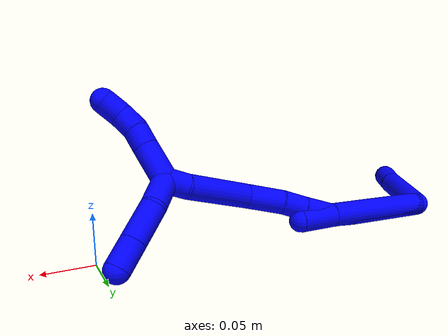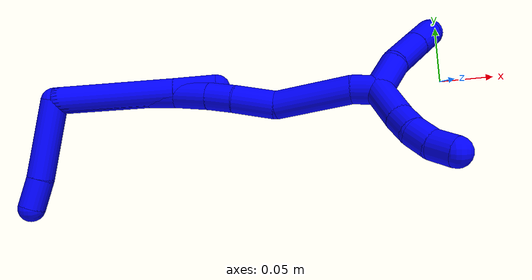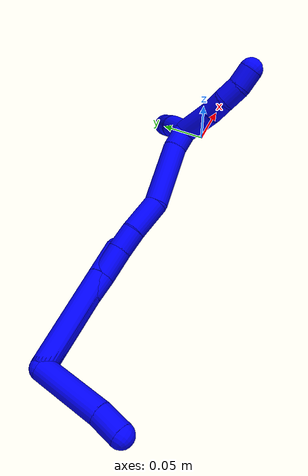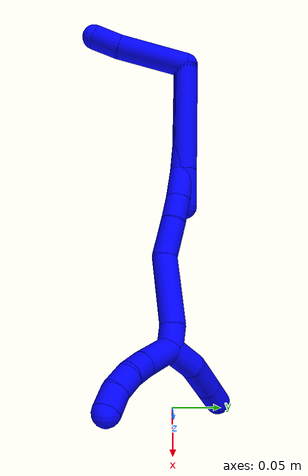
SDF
<sdf version="1.7">
 <world name="default">
  <model name="1">
   <static>0</static>
   <link name="1">
    <collision name="collision-cylinder-e_1_2_8">
     <pose>0.003902 0.002028 -0.055302 -3.10493 0.070403 -2.18167</pose>
     <geometry><cylinder><radius>0.0125</radius><length>0.110953</length></cylinder></geometry>
     <surface>
      <friction><ode><mu>1.16</mu><mu2>1.16</mu2><slip1>0</slip1><slip2>0</slip2></ode></friction>
      <contact><ode><kp>1e+06</kp><kd>1</kd><max_vel>0</max_vel><min_depth>0.001</min_depth></ode></contact>
     </surface>
    </collision>
    <visual name="visual-cylinder-e_1_2_8">
     <pose>0.003902 0.002028 -0.055302 -3.10493 0.070403 -2.18167</pose>
     <geometry><cylinder><radius>0.0125</radius><length>0.110953</length></cylinder></geometry>
     <material><ambient>0 0 1 1</ambient></material>
    </visual>
    <collision name="collision-cylinder-e_2_8_6">
     <pose>0.008786 0.005256 -0.130065 -3.08002 0.05027 -1.36926</pose>
     <geometry><cylinder><radius>0.0125</radius><length>0.039047</length></cylinder></geometry>
     <surface>
      <friction><ode><mu>1.16</mu><mu2>1.16</mu2><slip1>0</slip1><slip2>0</slip2></ode></friction>
      <contact><ode><kp>1e+06</kp><kd>1</kd><max_vel>0</max_vel><min_depth>0.001</min_depth></ode></contact>
     </surface>
    </collision>
    <visual name="visual-cylinder-e_2_8_6">
     <pose>0.008786 0.005256 -0.130065 -3.08002 0.05027 -1.36926</pose>
     <geometry><cylinder><radius>0.0125</radius><length>0.039047</length></cylinder></geometry>
     <material><ambient>0 0 1 1</ambient></material>
    </visual>
    <collision name="collision-cylinder-e_1_2_9">
     <pose>-0.014876 -0.032429 0.006212 1.38152 -0.423312 -0.351569</pose>
     <geometry><cylinder><radius>0.0125</radius><length>0.07243</length></cylinder></geometry>
     <surface>
      <friction><ode><mu>1.16</mu><mu2>1.16</mu2><slip1>0</slip1><slip2>0</slip2></ode></friction>
      <contact><ode><kp>1e+06</kp><kd>1</kd><max_vel>0</max_vel><min_depth>0.001</min_depth></ode></contact>
     </surface>
    </collision>
    <visual name="visual-cylinder-e_1_2_9">
     <pose>-0.014876 -0.032429 0.006212 1.38152 -0.423312 -0.351569</pose>
     <geometry><cylinder><radius>0.0125</radius><length>0.07243</length></cylinder></geometry>
     <material><ambient>0 0 1 1</ambient></material>
    </visual>
    <collision name="collision-cylinder-e_2_9_5">
     <pose>-0.035422 -0.076801 0.016326 1.25511 -0.423854 -0.309642</pose>
     <geometry><cylinder><radius>0.0125</radius><length>0.02757</length></cylinder></geometry>
     <surface>
      <friction><ode><mu>1.16</mu><mu2>1.16</mu2><slip1>0</slip1><slip2>0</slip2></ode></friction>
      <contact><ode><kp>1e+06</kp><kd>1</kd><max_vel>0</max_vel><min_depth>0.001</min_depth></ode></contact>
     </surface>
    </collision>
    <visual name="visual-cylinder-e_2_9_5">
     <pose>-0.035422 -0.076801 0.016326 1.25511 -0.423854 -0.309642</pose>
     <geometry><cylinder><radius>0.0125</radius><length>0.02757</length></cylinder></geometry>
     <material><ambient>0 0 1 1</ambient></material>
    </visual>
    <collision name="collision-cylinder-e_1_2_10">
     <pose>0.002466 0.001609 -0.04363 -3.10473 0.056415 -1.98418</pose>
     <geometry><cylinder><radius>0.0125</radius><length>0.087459</length></cylinder></geometry>
     <surface>
      <friction><ode><mu>1.16</mu><mu2>1.16</mu2><slip1>0</slip1><slip2>0</slip2></ode></friction>
      <contact><ode><kp>1e+06</kp><kd>1</kd><max_vel>0</max_vel><min_depth>0.001</min_depth></ode></contact>
     </surface>
    </collision>
    <visual name="visual-cylinder-e_1_2_10">
     <pose>0.002466 0.001609 -0.04363 -3.10473 0.056415 -1.98418</pose>
     <geometry><cylinder><radius>0.0125</radius><length>0.087459</length></cylinder></geometry>
     <material><ambient>0 0 1 1</ambient></material>
    </visual>
    <collision name="collision-cylinder-e_2_10_11">
     <pose>0.005581 0.002708 -0.099985 3.10153 0.050989 1.80982</pose>
     <geometry><cylinder><radius>0.0125</radius><length>0.025504</length></cylinder></geometry>
     <surface>
      <friction><ode><mu>1.16</mu><mu2>1.16</mu2><slip1>0</slip1><slip2>0</slip2></ode></friction>
      <contact><ode><kp>1e+06</kp><kd>1</kd><max_vel>0</max_vel><min_depth>0.001</min_depth></ode></contact>
     </surface>
    </collision>
    <visual name="visual-cylinder-e_2_10_11">
     <pose>0.005581 0.002708 -0.099985 3.10153 0.050989 1.80982</pose>
     <geometry><cylinder><radius>0.0125</radius><length>0.025504</length></cylinder></geometry>
     <material><ambient>0 0 1 1</ambient></material>
    </visual>
    <collision name="collision-cylinder-e_3_11_12">
     <pose>0.010662 -0.00149 -0.127997 2.90484 0.274602 1.72016</pose>
     <geometry><cylinder><radius>0.0125</radius><length>0.032676</length></cylinder></geometry>
     <surface>
      <friction><ode><mu>1.16</mu><mu2>1.16</mu2><slip1>0</slip1><slip2>0</slip2></ode></friction>
      <contact><ode><kp>1e+06</kp><kd>1</kd><max_vel>0</max_vel><min_depth>0.001</min_depth></ode></contact>
     </surface>
    </collision>
    <visual name="visual-cylinder-e_3_11_12">
     <pose>0.010662 -0.00149 -0.127997 2.90484 0.274602 1.72016</pose>
     <geometry><cylinder><radius>0.0125</radius><length>0.032676</length></cylinder></geometry>
     <material><ambient>0 0 1 1</ambient></material>
    </visual>
    <collision name="collision-cylinder-e_4_12_13">
     <pose>0.018359 -0.008645 -0.154751 2.84803 0.266236 1.47195</pose>
     <geometry><cylinder><radius>0.0125</radius><length>0.024832</length></cylinder></geometry>
     <surface>
      <friction><ode><mu>1.16</mu><mu2>1.16</mu2><slip1>0</slip1><slip2>0</slip2></ode></friction>
      <contact><ode><kp>1e+06</kp><kd>1</kd><max_vel>0</max_vel><min_depth>0.001</min_depth></ode></contact>
     </surface>
    </collision>
    <visual name="visual-cylinder-e_4_12_13">
     <pose>0.018359 -0.008645 -0.154751 2.84803 0.266236 1.47195</pose>
     <geometry><cylinder><radius>0.0125</radius><length>0.024832</length></cylinder></geometry>
     <material><ambient>0 0 1 1</ambient></material>
    </visual>
    <collision name="collision-cylinder-e_5_13_14">
     <pose>0.024488 -0.017089 -0.184579 2.87687 0.149342 1.02387</pose>
     <geometry><cylinder><radius>0.0125</radius><length>0.038477</length></cylinder></geometry>
     <surface>
      <friction><ode><mu>1.16</mu><mu2>1.16</mu2><slip1>0</slip1><slip2>0</slip2></ode></friction>
      <contact><ode><kp>1e+06</kp><kd>1</kd><max_vel>0</max_vel><min_depth>0.001</min_depth></ode></contact>
     </surface>
    </collision>
    <visual name="visual-cylinder-e_5_13_14">
     <pose>0.024488 -0.017089 -0.184579 2.87687 0.149342 1.02387</pose>
     <geometry><cylinder><radius>0.0125</radius><length>0.038477</length></cylinder></geometry>
     <material><ambient>0 0 1 1</ambient></material>
    </visual>
    <collision name="collision-cylinder-e_6_14_15">
     <pose>0.039848 -0.021698 -0.234966 -3.13008 0.37206 -3.08043</pose>
     <geometry><cylinder><radius>0.0125</radius><length>0.06876</length></cylinder></geometry>
     <surface>
      <friction><ode><mu>1.16</mu><mu2>1.16</mu2><slip1>0</slip1><slip2>0</slip2></ode></friction>
      <contact><ode><kp>1e+06</kp><kd>1</kd><max_vel>0</max_vel><min_depth>0.001</min_depth></ode></contact>
     </surface>
    </collision>
    <visual name="visual-cylinder-e_6_14_15">
     <pose>0.039848 -0.021698 -0.234966 -3.13008 0.37206 -3.08043</pose>
     <geometry><cylinder><radius>0.0125</radius><length>0.06876</length></cylinder></geometry>
     <material><ambient>0 0 1 1</ambient></material>
    </visual>
    <collision name="collision-cylinder-e_7_15_1">
     <pose>0.055795 -0.023815 -0.277295 2.90482 0.314545 1.85452</pose>
     <geometry><cylinder><radius>0.0125</radius><length>0.022293</length></cylinder></geometry>
     <surface>
      <friction><ode><mu>1.16</mu><mu2>1.16</mu2><slip1>0</slip1><slip2>0</slip2></ode></friction>
      <contact><ode><kp>1e+06</kp><kd>1</kd><max_vel>0</max_vel><min_depth>0.001</min_depth></ode></contact>
     </surface>
    </collision>
    <visual name="visual-cylinder-e_7_15_1">
     <pose>0.055795 -0.023815 -0.277295 2.90482 0.314545 1.85452</pose>
     <geometry><cylinder><radius>0.0125</radius><length>0.022293</length></cylinder></geometry>
     <material><ambient>0 0 1 1</ambient></material>
    </visual>
    <collision name="collision-cylinder-e_1_1_16">
     <pose>0.057691 -0.012264 -0.296198 -2.12039 -0.094044 0.16762</pose>
     <geometry><cylinder><radius>0.0125</radius><length>0.03307</length></cylinder></geometry>
     <surface>
      <friction><ode><mu>1.16</mu><mu2>1.16</mu2><slip1>0</slip1><slip2>0</slip2></ode></friction>
      <contact><ode><kp>1e+06</kp><kd>1</kd><max_vel>0</max_vel><min_depth>0.001</min_depth></ode></contact>
     </surface>
    </collision>
    <visual name="visual-cylinder-e_1_1_16">
     <pose>0.057691 -0.012264 -0.296198 -2.12039 -0.094044 0.16762</pose>
     <geometry><cylinder><radius>0.0125</radius><length>0.03307</length></cylinder></geometry>
     <material><ambient>0 0 1 1</ambient></material>
    </visual>
    <collision name="collision-cylinder-e_2_16_17">
     <pose>0.049603 0.015437 -0.316539 -2.28076 -0.347973 0.731219</pose>
     <geometry><cylinder><radius>0.0125</radius><length>0.038329</length></cylinder></geometry>
     <surface>
      <friction><ode><mu>1.16</mu><mu2>1.16</mu2><slip1>0</slip1><slip2>0</slip2></ode></friction>
      <contact><ode><kp>1e+06</kp><kd>1</kd><max_vel>0</max_vel><min_depth>0.001</min_depth></ode></contact>
     </surface>
    </collision>
    <visual name="visual-cylinder-e_2_16_17">
     <pose>0.049603 0.015437 -0.316539 -2.28076 -0.347973 0.731219</pose>
     <geometry><cylinder><radius>0.0125</radius><length>0.038329</length></cylinder></geometry>
     <material><ambient>0 0 1 1</ambient></material>
    </visual>
    <collision name="collision-cylinder-e_3_17_4">
     <pose>0.038155 0.039248 -0.337078 -2.28495 -0.350751 0.740386</pose>
     <geometry><cylinder><radius>0.0125</radius><length>0.028601</length></cylinder></geometry>
     <surface>
      <friction><ode><mu>1.16</mu><mu2>1.16</mu2><slip1>0</slip1><slip2>0</slip2></ode></friction>
      <contact><ode><kp>1e+06</kp><kd>1</kd><max_vel>0</max_vel><min_depth>0.001</min_depth></ode></contact>
     </surface>
    </collision>
    <visual name="visual-cylinder-e_3_17_4">
     <pose>0.038155 0.039248 -0.337078 -2.28495 -0.350751 0.740386</pose>
     <geometry><cylinder><radius>0.0125</radius><length>0.028601</length></cylinder></geometry>
     <material><ambient>0 0 1 1</ambient></material>
    </visual>
    <collision name="collision-cylinder-e_1_1_18">
     <pose>0.066127 -0.043361 -0.293521 1.90494 0.364171 0.506534</pose>
     <geometry><cylinder><radius>0.0125</radius><length>0.038652</length></cylinder></geometry>
     <surface>
      <friction><ode><mu>1.16</mu><mu2>1.16</mu2><slip1>0</slip1><slip2>0</slip2></ode></friction>
      <contact><ode><kp>1e+06</kp><kd>1</kd><max_vel>0</max_vel><min_depth>0.001</min_depth></ode></contact>
     </surface>
    </collision>
    <visual name="visual-cylinder-e_1_1_18">
     <pose>0.066127 -0.043361 -0.293521 1.90494 0.364171 0.506534</pose>
     <geometry><cylinder><radius>0.0125</radius><length>0.038652</length></cylinder></geometry>
     <material><ambient>0 0 1 1</ambient></material>
    </visual>
    <collision name="collision-cylinder-e_2_18_19">
     <pose>0.077753 -0.068915 -0.302755 1.94248 0.479656 0.687171</pose>
     <geometry><cylinder><radius>0.0125</radius><length>0.020552</length></cylinder></geometry>
     <surface>
      <friction><ode><mu>1.16</mu><mu2>1.16</mu2><slip1>0</slip1><slip2>0</slip2></ode></friction>
      <contact><ode><kp>1e+06</kp><kd>1</kd><max_vel>0</max_vel><min_depth>0.001</min_depth></ode></contact>
     </surface>
    </collision>
    <visual name="visual-cylinder-e_2_18_19">
     <pose>0.077753 -0.068915 -0.302755 1.94248 0.479656 0.687171</pose>
     <geometry><cylinder><radius>0.0125</radius><length>0.020552</length></cylinder></geometry>
     <material><ambient>0 0 1 1</ambient></material>
    </visual>
    <collision name="collision-cylinder-e_3_19_20">
     <pose>0.086085 -0.084855 -0.311819 2.22865 0.364469 0.718006</pose>
     <geometry><cylinder><radius>0.0125</radius><length>0.020143</length></cylinder></geometry>
     <surface>
      <friction><ode><mu>1.16</mu><mu2>1.16</mu2><slip1>0</slip1><slip2>0</slip2></ode></friction>
      <contact><ode><kp>1e+06</kp><kd>1</kd><max_vel>0</max_vel><min_depth>0.001</min_depth></ode></contact>
     </surface>
    </collision>
    <visual name="visual-cylinder-e_3_19_20">
     <pose>0.086085 -0.084855 -0.311819 2.22865 0.364469 0.718006</pose>
     <geometry><cylinder><radius>0.0125</radius><length>0.020143</length></cylinder></geometry>
     <material><ambient>0 0 1 1</ambient></material>
    </visual>
    <collision name="collision-cylinder-e_4_20_3">
     <pose>0.094557 -0.097808 -0.324817 2.49167 0.492423 1.28179</pose>
     <geometry><cylinder><radius>0.0125</radius><length>0.020653</length></cylinder></geometry>
     <surface>
      <friction><ode><mu>1.16</mu><mu2>1.16</mu2><slip1>0</slip1><slip2>0</slip2></ode></friction>
      <contact><ode><kp>1e+06</kp><kd>1</kd><max_vel>0</max_vel><min_depth>0.001</min_depth></ode></contact>
     </surface>
    </collision>
    <visual name="visual-cylinder-e_4_20_3">
     <pose>0.094557 -0.097808 -0.324817 2.49167 0.492423 1.28179</pose>
     <geometry><cylinder><radius>0.0125</radius><length>0.020653</length></cylinder></geometry>
     <material><ambient>0 0 1 1</ambient></material>
    </visual>
    <collision name="collision-sphere-3">
     <pose>0.099439 -0.103314 -0.332061 0 -0 0</pose>
     <geometry><sphere><radius>0.0125</radius></sphere></geometry>
     <surface>
      <friction><ode><mu>1.16</mu><mu2>1.16</mu2><slip1>0</slip1><slip2>0</slip2></ode></friction>
      <contact><ode><kp>1e+06</kp><kd>1</kd><max_vel>0</max_vel><min_depth>0.001</min_depth></ode></contact>
     </surface>
    </collision>
    <visual name="visual-sphere-3">
     <pose>0.099439 -0.103314 -0.332061 0 -0 0</pose>
     <geometry><sphere><radius>0.0125</radius></sphere></geometry>
     <material><ambient>0 0 1 1</ambient></material>
    </visual>
    <collision name="collision-sphere-20">
     <pose>0.089675 -0.092301 -0.317572 0 -0 0</pose>
     <geometry><sphere><radius>0.0125</radius></sphere></geometry>
     <surface>
      <friction><ode><mu>1.16</mu><mu2>1.16</mu2><slip1>0</slip1><slip2>0</slip2></ode></friction>
      <contact><ode><kp>1e+06</kp><kd>1</kd><max_vel>0</max_vel><min_depth>0.001</min_depth></ode></contact>
     </surface>
    </collision>
    <visual name="visual-sphere-20">
     <pose>0.089675 -0.092301 -0.317572 0 -0 0</pose>
     <geometry><sphere><radius>0.0125</radius></sphere></geometry>
     <material><ambient>0 0 1 1</ambient></material>
    </visual>
    <collision name="collision-sphere-19">
     <pose>0.082495 -0.077409 -0.306066 0 -0 0</pose>
     <geometry><sphere><radius>0.0125</radius></sphere></geometry>
     <surface>
      <friction><ode><mu>1.16</mu><mu2>1.16</mu2><slip1>0</slip1><slip2>0</slip2></ode></friction>
      <contact><ode><kp>1e+06</kp><kd>1</kd><max_vel>0</max_vel><min_depth>0.001</min_depth></ode></contact>
     </surface>
    </collision>
    <visual name="visual-sphere-19">
     <pose>0.082495 -0.077409 -0.306066 0 -0 0</pose>
     <geometry><sphere><radius>0.0125</radius></sphere></geometry>
     <material><ambient>0 0 1 1</ambient></material>
    </visual>
    <collision name="collision-sphere-10">
     <pose>0.004931 0.003218 -0.08726 0 -0 0</pose>
     <geometry><sphere><radius>0.0125</radius></sphere></geometry>
     <surface>
      <friction><ode><mu>1.16</mu><mu2>1.16</mu2><slip1>0</slip1><slip2>0</slip2></ode></friction>
      <contact><ode><kp>1e+06</kp><kd>1</kd><max_vel>0</max_vel><min_depth>0.001</min_depth></ode></contact>
     </surface>
    </collision>
    <visual name="visual-sphere-10">
     <pose>0.004931 0.003218 -0.08726 0 -0 0</pose>
     <geometry><sphere><radius>0.0125</radius></sphere></geometry>
     <material><ambient>0 0 1 1</ambient></material>
    </visual>
    <collision name="collision-sphere-5">
     <pose>-0.041092 -0.088746 0.020227 0 -0 0</pose>
     <geometry><sphere><radius>0.0125</radius></sphere></geometry>
     <surface>
      <friction><ode><mu>1.16</mu><mu2>1.16</mu2><slip1>0</slip1><slip2>0</slip2></ode></friction>
      <contact><ode><kp>1e+06</kp><kd>1</kd><max_vel>0</max_vel><min_depth>0.001</min_depth></ode></contact>
     </surface>
    </collision>
    <visual name="visual-sphere-5">
     <pose>-0.041092 -0.088746 0.020227 0 -0 0</pose>
     <geometry><sphere><radius>0.0125</radius></sphere></geometry>
     <material><ambient>0 0 1 1</ambient></material>
    </visual>
    <collision name="collision-sphere-6">
     <pose>0.009767 0.006456 -0.149528 0 -0 0</pose>
     <geometry><sphere><radius>0.0125</radius></sphere></geometry>
     <surface>
      <friction><ode><mu>1.16</mu><mu2>1.16</mu2><slip1>0</slip1><slip2>0</slip2></ode></friction>
      <contact><ode><kp>1e+06</kp><kd>1</kd><max_vel>0</max_vel><min_depth>0.001</min_depth></ode></contact>
     </surface>
    </collision>
    <visual name="visual-sphere-6">
     <pose>0.009767 0.006456 -0.149528 0 -0 0</pose>
     <geometry><sphere><radius>0.0125</radius></sphere></geometry>
     <material><ambient>0 0 1 1</ambient></material>
    </visual>
    <collision name="collision-sphere-9">
     <pose>-0.029753 -0.064857 0.012425 0 -0 0</pose>
     <geometry><sphere><radius>0.0125</radius></sphere></geometry>
     <surface>
      <friction><ode><mu>1.16</mu><mu2>1.16</mu2><slip1>0</slip1><slip2>0</slip2></ode></friction>
      <contact><ode><kp>1e+06</kp><kd>1</kd><max_vel>0</max_vel><min_depth>0.001</min_depth></ode></contact>
     </surface>
    </collision>
    <visual name="visual-sphere-9">
     <pose>-0.029753 -0.064857 0.012425 0 -0 0</pose>
     <geometry><sphere><radius>0.0125</radius></sphere></geometry>
     <material><ambient>0 0 1 1</ambient></material>
    </visual>
    <collision name="collision-sphere-2">
     <geometry><sphere><radius>0.0125</radius></sphere></geometry>
     <surface>
      <friction><ode><mu>1.16</mu><mu2>1.16</mu2><slip1>0</slip1><slip2>0</slip2></ode></friction>
      <contact><ode><kp>1e+06</kp><kd>1</kd><max_vel>0</max_vel><min_depth>0.001</min_depth></ode></contact>
     </surface>
    </collision>
    <visual name="visual-sphere-2">
     <geometry><sphere><radius>0.0125</radius></sphere></geometry>
     <material><ambient>0 0 1 1</ambient></material>
    </visual>
    <collision name="collision-sphere-8">
     <pose>0.007805 0.004057 -0.110603 0 -0 0</pose>
     <geometry><sphere><radius>0.0125</radius></sphere></geometry>
     <surface>
      <friction><ode><mu>1.16</mu><mu2>1.16</mu2><slip1>0</slip1><slip2>0</slip2></ode></friction>
      <contact><ode><kp>1e+06</kp><kd>1</kd><max_vel>0</max_vel><min_depth>0.001</min_depth></ode></contact>
     </surface>
    </collision>
    <visual name="visual-sphere-8">
     <pose>0.007805 0.004057 -0.110603 0 -0 0</pose>
     <geometry><sphere><radius>0.0125</radius></sphere></geometry>
     <material><ambient>0 0 1 1</ambient></material>
    </visual>
    <collision name="collision-sphere-11">
     <pose>0.006231 0.002198 -0.11271 0 -0 0</pose>
     <geometry><sphere><radius>0.0125</radius></sphere></geometry>
     <surface>
      <friction><ode><mu>1.16</mu><mu2>1.16</mu2><slip1>0</slip1><slip2>0</slip2></ode></friction>
      <contact><ode><kp>1e+06</kp><kd>1</kd><max_vel>0</max_vel><min_depth>0.001</min_depth></ode></contact>
     </surface>
    </collision>
    <visual name="visual-sphere-11">
     <pose>0.006231 0.002198 -0.11271 0 -0 0</pose>
     <geometry><sphere><radius>0.0125</radius></sphere></geometry>
     <material><ambient>0 0 1 1</ambient></material>
    </visual>
    <collision name="collision-sphere-12">
     <pose>0.015092 -0.005179 -0.143285 0 -0 0</pose>
     <geometry><sphere><radius>0.0125</radius></sphere></geometry>
     <surface>
      <friction><ode><mu>1.16</mu><mu2>1.16</mu2><slip1>0</slip1><slip2>0</slip2></ode></friction>
      <contact><ode><kp>1e+06</kp><kd>1</kd><max_vel>0</max_vel><min_depth>0.001</min_depth></ode></contact>
     </surface>
    </collision>
    <visual name="visual-sphere-12">
     <pose>0.015092 -0.005179 -0.143285 0 -0 0</pose>
     <geometry><sphere><radius>0.0125</radius></sphere></geometry>
     <material><ambient>0 0 1 1</ambient></material>
    </visual>
    <collision name="collision-sphere-13">
     <pose>0.021625 -0.012111 -0.166217 0 -0 0</pose>
     <geometry><sphere><radius>0.0125</radius></sphere></geometry>
     <surface>
      <friction><ode><mu>1.16</mu><mu2>1.16</mu2><slip1>0</slip1><slip2>0</slip2></ode></friction>
      <contact><ode><kp>1e+06</kp><kd>1</kd><max_vel>0</max_vel><min_depth>0.001</min_depth></ode></contact>
     </surface>
    </collision>
    <visual name="visual-sphere-13">
     <pose>0.021625 -0.012111 -0.166217 0 -0 0</pose>
     <geometry><sphere><radius>0.0125</radius></sphere></geometry>
     <material><ambient>0 0 1 1</ambient></material>
    </visual>
    <collision name="collision-sphere-14">
     <pose>0.02735 -0.022066 -0.20294 0 -0 0</pose>
     <geometry><sphere><radius>0.0125</radius></sphere></geometry>
     <surface>
      <friction><ode><mu>1.16</mu><mu2>1.16</mu2><slip1>0</slip1><slip2>0</slip2></ode></friction>
      <contact><ode><kp>1e+06</kp><kd>1</kd><max_vel>0</max_vel><min_depth>0.001</min_depth></ode></contact>
     </surface>
    </collision>
    <visual name="visual-sphere-14">
     <pose>0.02735 -0.022066 -0.20294 0 -0 0</pose>
     <geometry><sphere><radius>0.0125</radius></sphere></geometry>
     <material><ambient>0 0 1 1</ambient></material>
    </visual>
    <collision name="collision-sphere-15">
     <pose>0.052347 -0.021329 -0.266991 0 -0 0</pose>
     <geometry><sphere><radius>0.0125</radius></sphere></geometry>
     <surface>
      <friction><ode><mu>1.16</mu><mu2>1.16</mu2><slip1>0</slip1><slip2>0</slip2></ode></friction>
      <contact><ode><kp>1e+06</kp><kd>1</kd><max_vel>0</max_vel><min_depth>0.001</min_depth></ode></contact>
     </surface>
    </collision>
    <visual name="visual-sphere-15">
     <pose>0.052347 -0.021329 -0.266991 0 -0 0</pose>
     <geometry><sphere><radius>0.0125</radius></sphere></geometry>
     <material><ambient>0 0 1 1</ambient></material>
    </visual>
    <collision name="collision-sphere-1">
     <pose>0.059244 -0.026302 -0.287599 0 -0 0</pose>
     <geometry><sphere><radius>0.0125</radius></sphere></geometry>
     <surface>
      <friction><ode><mu>1.16</mu><mu2>1.16</mu2><slip1>0</slip1><slip2>0</slip2></ode></friction>
      <contact><ode><kp>1e+06</kp><kd>1</kd><max_vel>0</max_vel><min_depth>0.001</min_depth></ode></contact>
     </surface>
    </collision>
    <visual name="visual-sphere-1">
     <pose>0.059244 -0.026302 -0.287599 0 -0 0</pose>
     <geometry><sphere><radius>0.0125</radius></sphere></geometry>
     <material><ambient>0 0 1 1</ambient></material>
    </visual>
    <collision name="collision-sphere-18">
     <pose>0.073011 -0.060421 -0.299444 0 -0 0</pose>
     <geometry><sphere><radius>0.0125</radius></sphere></geometry>
     <surface>
      <friction><ode><mu>1.16</mu><mu2>1.16</mu2><slip1>0</slip1><slip2>0</slip2></ode></friction>
      <contact><ode><kp>1e+06</kp><kd>1</kd><max_vel>0</max_vel><min_depth>0.001</min_depth></ode></contact>
     </surface>
    </collision>
    <visual name="visual-sphere-18">
     <pose>0.073011 -0.060421 -0.299444 0 -0 0</pose>
     <geometry><sphere><radius>0.0125</radius></sphere></geometry>
     <material><ambient>0 0 1 1</ambient></material>
    </visual>
    <collision name="collision-sphere-16">
     <pose>0.056138 0.001774 -0.304796 0 -0 0</pose>
     <geometry><sphere><radius>0.0125</radius></sphere></geometry>
     <surface>
      <friction><ode><mu>1.16</mu><mu2>1.16</mu2><slip1>0</slip1><slip2>0</slip2></ode></friction>
      <contact><ode><kp>1e+06</kp><kd>1</kd><max_vel>0</max_vel><min_depth>0.001</min_depth></ode></contact>
     </surface>
    </collision>
    <visual name="visual-sphere-16">
     <pose>0.056138 0.001774 -0.304796 0 -0 0</pose>
     <geometry><sphere><radius>0.0125</radius></sphere></geometry>
     <material><ambient>0 0 1 1</ambient></material>
    </visual>
    <collision name="collision-sphere-17">
     <pose>0.043068 0.0291 -0.328282 0 -0 0</pose>
     <geometry><sphere><radius>0.0125</radius></sphere></geometry>
     <surface>
      <friction><ode><mu>1.16</mu><mu2>1.16</mu2><slip1>0</slip1><slip2>0</slip2></ode></friction>
      <contact><ode><kp>1e+06</kp><kd>1</kd><max_vel>0</max_vel><min_depth>0.001</min_depth></ode></contact>
     </surface>
    </collision>
    <visual name="visual-sphere-17">
     <pose>0.043068 0.0291 -0.328282 0 -0 0</pose>
     <geometry><sphere><radius>0.0125</radius></sphere></geometry>
     <material><ambient>0 0 1 1</ambient></material>
    </visual>
    <collision name="collision-sphere-4">
     <pose>0.033241 0.049396 -0.345874 0 -0 0</pose>
     <geometry><sphere><radius>0.0125</radius></sphere></geometry>
     <surface>
      <friction><ode><mu>1.16</mu><mu2>1.16</mu2><slip1>0</slip1><slip2>0</slip2></ode></friction>
      <contact><ode><kp>1e+06</kp><kd>1</kd><max_vel>0</max_vel><min_depth>0.001</min_depth></ode></contact>
     </surface>
    </collision>
    <visual name="visual-sphere-4">
     <pose>0.033241 0.049396 -0.345874 0 -0 0</pose>
     <geometry><sphere><radius>0.0125</radius></sphere></geometry>
     <material><ambient>0 0 1 1</ambient></material>
    </visual>
    <inertial>
     <pose>0.023402 -0.016377 -0.155028 0 -0 0</pose>
     <mass>0.75</mass>
     <inertia>
      <ixx>-0.000205</ixx>
      <ixy>0</ixy>
      <ixz>0</ixz>
      <iyy>-2.6e-05</iyy>
      <iyz>0</iyz>
      <izz>-2.4e-05</izz>
     </inertia>
    </inertial>
   </link>
   <pose>-0.35852 0.016135 0.012507 -1.52723 -1.08054 1.4469</pose>
  </model>
 </world>
</sdf>
